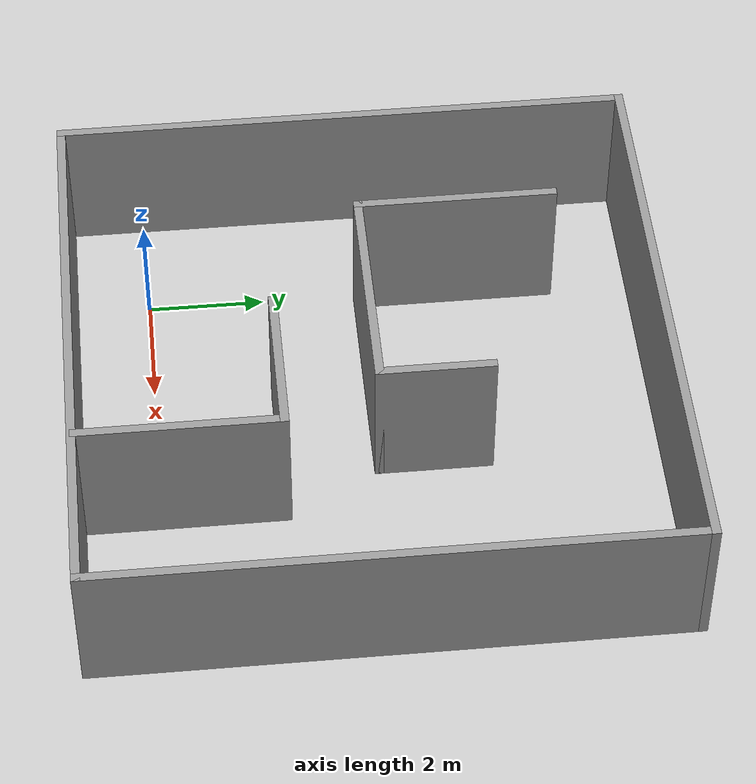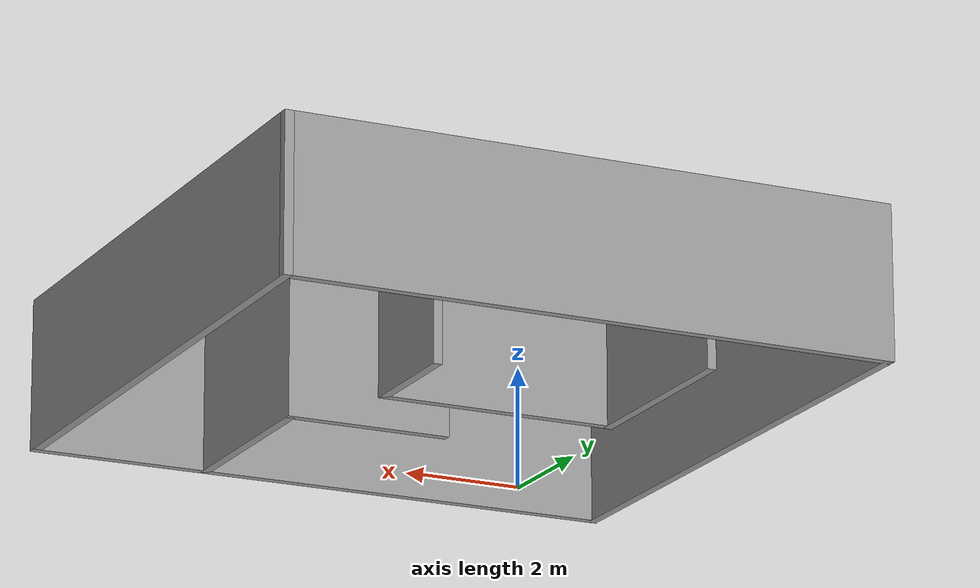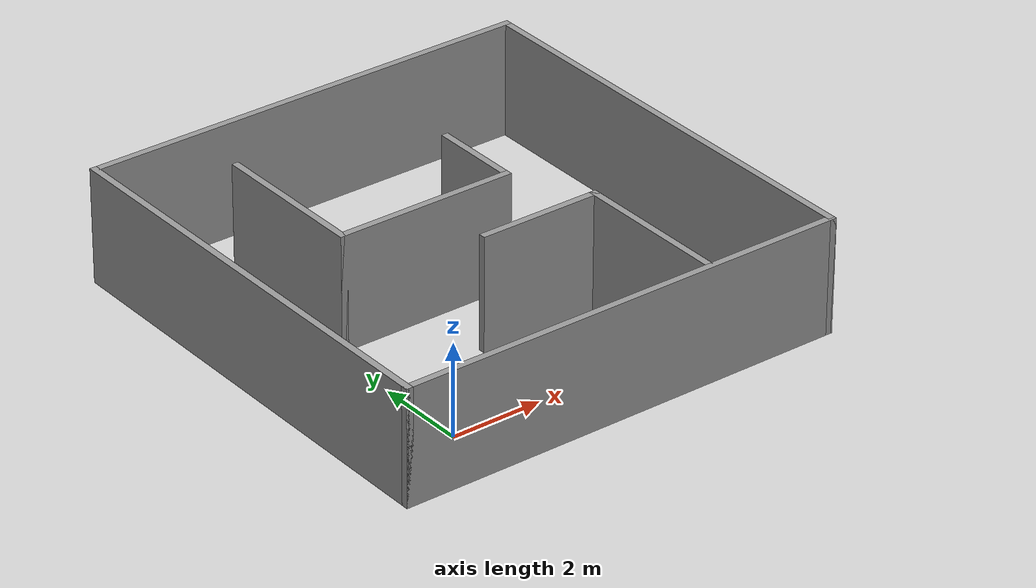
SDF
<?xml version='1.0'?>
<sdf version='1.7'>
  <model name='room1'>
    <pose>2.895 3.595 0 0 -0 0</pose>
    <link name='Wall_0'>
      <collision name='Wall_0_Collision'>
        <geometry>
          <box>
            <size>10 0.15 2.5</size>
          </box>
        </geometry>
        <pose>0 0 1.25 0 -0 0</pose>
      </collision>
      <visual name='Wall_0_Visual'>
        <pose>0 0 1.25 0 -0 0</pose>
        <geometry>
          <box>
            <size>10 0.15 2.5</size>
          </box>
        </geometry>
        <material>
          <script>
            <uri>file://media/materials/scripts/gazebo.material</uri>
            <name>Gazebo/Grey</name>
          </script>
          <ambient>1 1 1 1</ambient>
        </material>
        <meta>
          <layer>0</layer>
        </meta>
      </visual>
      <pose>-4.925 0 0 0 -0 1.5708</pose>
    </link>
    <link name='Wall_10'>
      <collision name='Wall_10_Collision'>
        <geometry>
          <box>
            <size>2 0.15 2.5</size>
          </box>
        </geometry>
        <pose>0 0 1.25 0 -0 0</pose>
      </collision>
      <visual name='Wall_10_Visual'>
        <pose>0 0 1.25 0 -0 0</pose>
        <geometry>
          <box>
            <size>2 0.15 2.5</size>
          </box>
        </geometry>
        <material>
          <script>
            <uri>file://media/materials/scripts/gazebo.material</uri>
            <name>Gazebo/Grey</name>
          </script>
          <ambient>1 1 1 1</ambient>
        </material>
        <meta>
          <layer>0</layer>
        </meta>
      </visual>
      <pose>1.16164 1.00679 0 0 -0 1.5708</pose>
    </link>
    <link name='Wall_12'>
      <collision name='Wall_12_Collision'>
        <geometry>
          <box>
            <size>2.75 0.15 2.5</size>
          </box>
        </geometry>
        <pose>0 0 1.25 0 -0 0</pose>
      </collision>
      <visual name='Wall_12_Visual'>
        <pose>0 0 1.25 0 -0 0</pose>
        <geometry>
          <box>
            <size>2.75 0.15 2.5</size>
          </box>
        </geometry>
        <material>
          <script>
            <uri>file://media/materials/scripts/gazebo.material</uri>
            <name>Gazebo/Grey</name>
          </script>
          <ambient>1 1 1 1</ambient>
        </material>
        <meta>
          <layer>0</layer>
        </meta>
      </visual>
      <pose>0.722368 -1.52383 0 0 -0 0</pose>
    </link>
    <link name='Wall_17'>
      <collision name='Wall_17_Collision'>
        <geometry>
          <box>
            <size>3.5 0.15 2.5</size>
          </box>
        </geometry>
        <pose>0 0 1.25 0 -0 0</pose>
      </collision>
      <visual name='Wall_17_Visual'>
        <pose>0 0 1.25 0 -0 0</pose>
        <geometry>
          <box>
            <size>3.5 0.15 2.5</size>
          </box>
        </geometry>
        <material>
          <script>
            <uri>file://media/materials/scripts/gazebo.material</uri>
            <name>Gazebo/Grey</name>
          </script>
          <ambient>1 1 1 1</ambient>
        </material>
        <meta>
          <layer>0</layer>
        </meta>
      </visual>
      <pose>2.02237 -3.19883 0 0 -0 -1.5708</pose>
    </link>
    <link name='Wall_2'>
      <collision name='Wall_2_Collision'>
        <geometry>
          <box>
            <size>10 0.15 2.5</size>
          </box>
        </geometry>
        <pose>0 0 1.25 0 -0 0</pose>
      </collision>
      <visual name='Wall_2_Visual'>
        <pose>0 0 1.25 0 -0 0</pose>
        <geometry>
          <box>
            <size>10 0.15 2.5</size>
          </box>
        </geometry>
        <material>
          <script>
            <uri>file://media/materials/scripts/gazebo.material</uri>
            <name>Gazebo/Grey</name>
          </script>
          <ambient>1 1 1 1</ambient>
        </material>
        <meta>
          <layer>0</layer>
        </meta>
      </visual>
      <pose>-0 -4.925 0 0 -0 0</pose>
    </link>
    <link name='Wall_3'>
      <collision name='Wall_3_Collision'>
        <geometry>
          <box>
            <size>10 0.15 2.5</size>
          </box>
        </geometry>
        <pose>0 0 1.25 0 -0 0</pose>
      </collision>
      <visual name='Wall_3_Visual'>
        <pose>0 0 1.25 0 -0 0</pose>
        <geometry>
          <box>
            <size>10 0.15 2.5</size>
          </box>
        </geometry>
        <material>
          <script>
            <uri>file://media/materials/scripts/gazebo.material</uri>
            <name>Gazebo/Grey</name>
          </script>
          <ambient>1 1 1 1</ambient>
        </material>
        <meta>
          <layer>0</layer>
        </meta>
      </visual>
      <pose>4.925 0 0 0 -0 1.5708</pose>
    </link>
    <link name='Wall_4'>
      <collision name='Wall_4_Collision'>
        <geometry>
          <box>
            <size>10 0.15 2.5</size>
          </box>
        </geometry>
        <pose>0 0 1.25 0 -0 0</pose>
      </collision>
      <visual name='Wall_4_Visual'>
        <pose>0 0 1.25 0 -0 0</pose>
        <geometry>
          <box>
            <size>10 0.15 2.5</size>
          </box>
        </geometry>
        <material>
          <script>
            <uri>file://media/materials/scripts/gazebo.material</uri>
            <name>Gazebo/Grey</name>
          </script>
          <ambient>1 1 1 1</ambient>
        </material>
        <meta>
          <layer>0</layer>
        </meta>
      </visual>
      <pose>-0 4.925 0 0 -0 3.14159</pose>
    </link>
    <link name='Wall_8'>
      <collision name='Wall_8_Collision'>
        <geometry>
          <box>
            <size>3.5 0.15 2.5</size>
          </box>
        </geometry>
        <pose>0 0 1.25 0 -0 0</pose>
      </collision>
      <visual name='Wall_8_Visual'>
        <pose>0 0 1.25 0 -0 0</pose>
        <geometry>
          <box>
            <size>3.5 0.15 2.5</size>
          </box>
        </geometry>
        <material>
          <script>
            <uri>file://media/materials/scripts/gazebo.material</uri>
            <name>Gazebo/Grey</name>
          </script>
          <ambient>1 1 1 1</ambient>
        </material>
        <meta>
          <layer>0</layer>
        </meta>
      </visual>
      <pose>-2.68836 1.75679 0 0 -0 -1.5708</pose>
    </link>
    <link name='Wall_9'>
      <collision name='Wall_9_Collision'>
        <geometry>
          <box>
            <size>4 0.15 2.5</size>
          </box>
        </geometry>
        <pose>0 0 1.25 0 -0 0</pose>
      </collision>
      <visual name='Wall_9_Visual'>
        <pose>0 0 1.25 0 -0 0</pose>
        <geometry>
          <box>
            <size>4 0.15 2.5</size>
          </box>
        </geometry>
        <material>
          <script>
            <uri>file://media/materials/scripts/gazebo.material</uri>
            <name>Gazebo/Grey</name>
          </script>
          <ambient>1 1 1 1</ambient>
        </material>
        <meta>
          <layer>0</layer>
        </meta>
      </visual>
      <pose>-0.763357 0.081789 0 0 -0 0</pose>
    </link>
    <static>1</static>
  </model>
</sdf>
